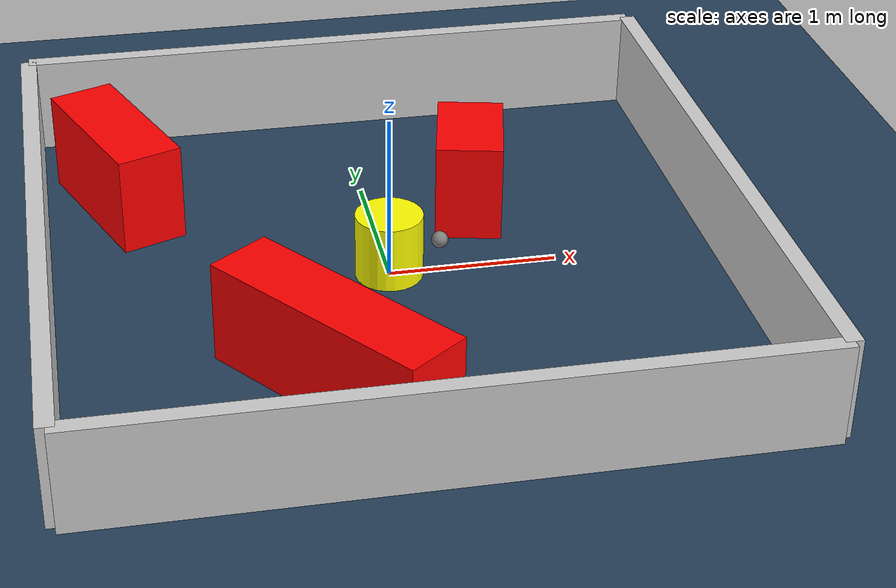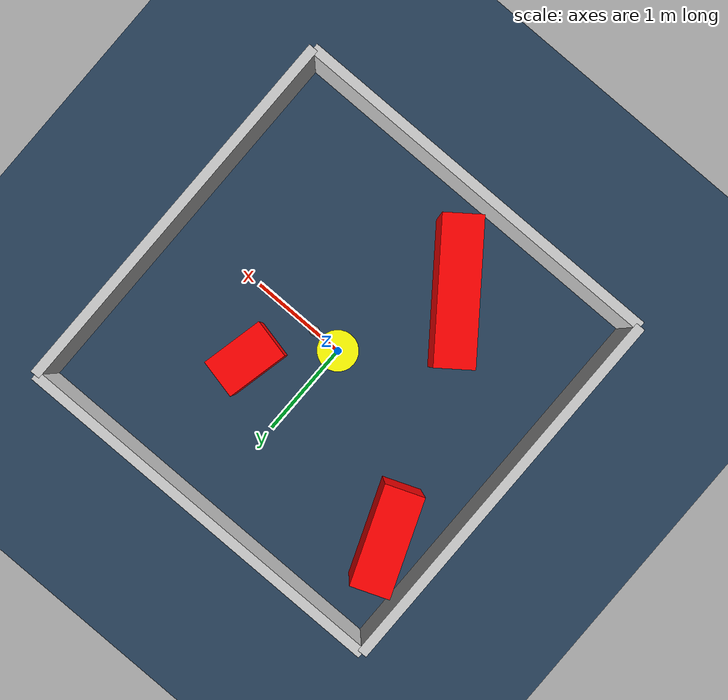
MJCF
<?xml version="1.0" ?>
<mujoco model="generated_environment">
  <option timestep="0.01" integrator="RK4" cone="elliptic"/>
  <default>
    <geom density="1"/>
  </default>
  <asset>
    <texture builtin="gradient" height="3072" rgb1="0.3 0.5 0.7" rgb2="0 0 0" type="skybox" width="512"/>
    <texture builtin="checker" height="300" mark="edge" markrgb="0.8 0.8 0.8" name="groundplane" rgb1="0.2 0.3 0.4" rgb2="0.1 0.2 0.3" type="2d" width="300"/>
    <material name="groundplane" reflectance="0.2" texrepeat="5 5" texture="groundplane" texuniform="true"/>
    <material name="robot" rgba="0.0 1.0 0.0 1"/>
  </asset>
  <worldbody>
    <light dir="0 0 -1" directional="true" pos="0 0 1.5"/>
    <geom condim="4" friction="1.0 0.005 0.001" material="groundplane" name="floor" size="0 0 0.05" type="plane"/>
    <body name="walls">
      <geom name="wall_1" condim="4" pos="-2.0 0.0 0.3" rgba="0.800000011920929 0.800000011920929 0.800000011920929 1.0" size="0.05 2.0 0.3" type="box"/>
      <geom name="wall_2" condim="4" pos="2.0 0.0 0.3" rgba="0.800000011920929 0.800000011920929 0.800000011920929 1.0" size="0.05 2.0 0.3" type="box"/>
      <geom name="wall_3" condim="4" pos="0.0 -2.0 0.3" rgba="0.800000011920929 0.800000011920929 0.800000011920929 1.0" size="2.0 0.05 0.3" type="box"/>
      <geom name="wall_4" condim="4" pos="0.0 2.0 0.3" rgba="0.800000011920929 0.800000011920929 0.800000011920929 1.0" size="2.0 0.05 0.3" type="box"/>
    </body>
    <body name="robot">
      <joint name="joint_x" type="slide" pos="0 0 0" axis="1 0 0"/>
      <joint name="joint_y" type="slide" pos="0 0 0" axis="0 1 0"/>
      <geom name="robot" type="sphere" pos="0.3 0.0 0.2" size="0.05" mass="5." friction="1.0 0.005 0.0001" condim="4" rgba="0.5 0.5 0.5 1.0"/>
      <site name="sensor_ball"/>
    </body>
    <body name="obstacle_movable_1">
      <geom name="obstacle_movable_1" condim="4" pos="0.0 0.0 0.2" euler="0 0 0.0" friction="1.0 0.005 0.001" rgba="1.0 1.0 0.0 1.0" size="0.2 0.2 0.0" type="cylinder" mass="0.1"/>
      <joint type="free"/>
    </body>
    <body name="obstacle_2_static">
      <geom name="obstacle_2_static" condim="4" pos="-0.49862176467946806 -1.155235584148116 0.3" euler="0 0 126.99549581643974" friction="1.0 0.005 0.001" rgba="1 0 0 1" size="0.7270595833879532 0.2 0.3" type="box"/>
    </body>
    <body name="obstacle_3_static">
      <geom name="obstacle_3_static" condim="4" pos="0.6105376206530679 0.6211657685376053 0.3" euler="0 0 257.3262905922473" friction="1.0 0.005 0.001" rgba="1 0 0 1" size="0.31717325023870296 0.2 0.3" type="box"/>
    </body>
    <body name="obstacle_4_static">
      <geom name="obstacle_4_static" condim="4" pos="-1.5051016070489378 1.0537831318775759 0.3" euler="0 0 111.16294970026198" friction="1.0 0.005 0.001" rgba="1 0 0 1" size="0.5044753939819107 0.2 0.3" type="box"/>
    </body>
  </worldbody>
  <actuator>
    <motor name="actuator_x" joint="joint_x" gear="1" ctrlrange="-1 1"/>
    <motor name="actuator_y" joint="joint_y" gear="1" ctrlrange="-1 1"/>
  </actuator>
</mujoco>
